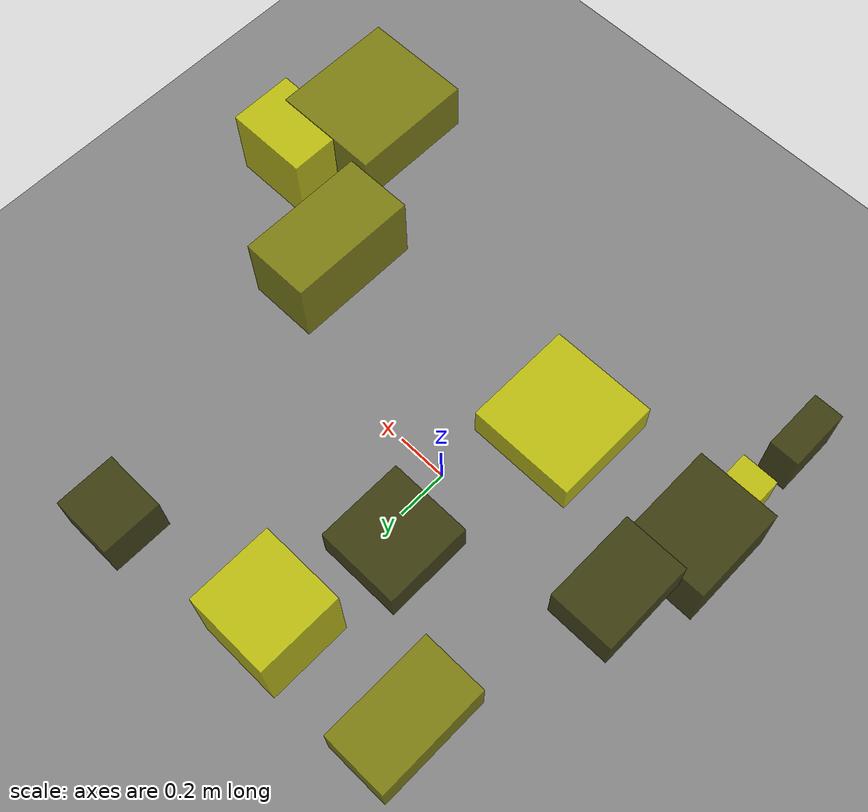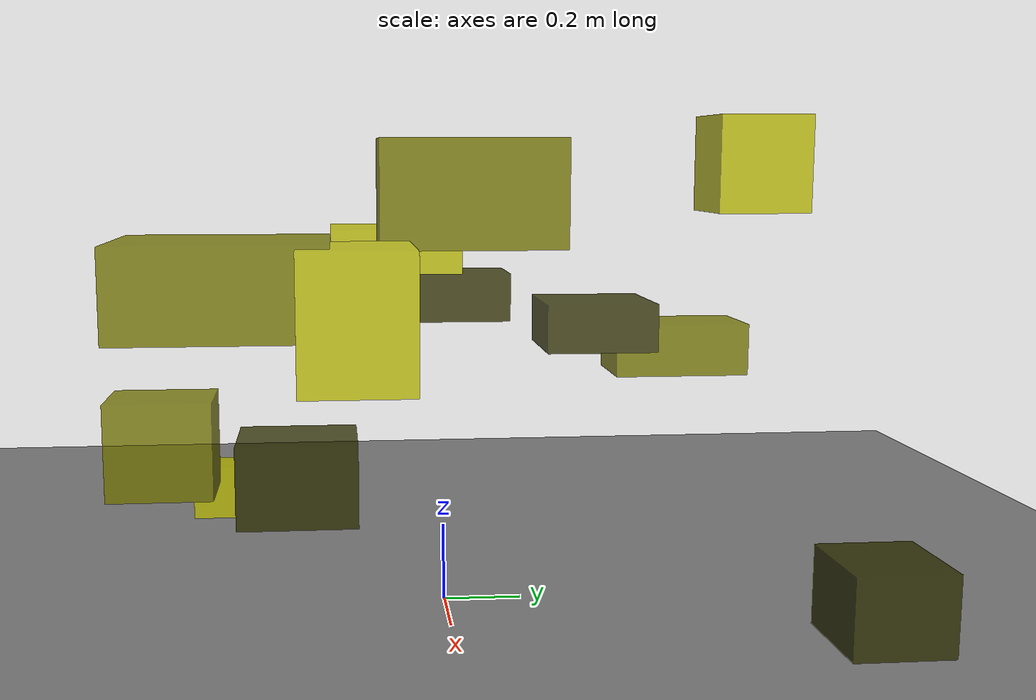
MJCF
<?xml version="1.0"?>
<mujoco model="obstacle_scene">
  <compiler angle="radian" coordinate="local"/>
  <option timestep="0.001" gravity="0 0 -9.81"/>

  <asset>
    <material name="obstacle_mat" rgba="0.8 0.8 0.0 0.8"/>
    <material name="ground_mat" rgba="0.5 0.5 0.5 1"/>
  </asset>

  <worldbody>
    <!-- Ground plane -->
    <geom name="ground" type="plane" size="3 3 0.1" material="ground_mat"/>

    <!-- Obstacles -->
    <body name="obstacle_0" pos="0.633501 0.911309 0.187976">
      <geom name="obs_0" type="box" size="0.121818 0.114896 0.093543" rgba="0.2 0.2 0.0 0.8"/>
    </body>
    <body name="obstacle_1" pos="0.777344 -0.488905 0.903574">
      <geom name="obs_1" type="box" size="0.180055 0.203262 0.088653" rgba="0.5 0.5 0.0 0.8"/>
    </body>
    <body name="obstacle_2" pos="-0.381252 -0.107235 0.895071">
      <geom name="obs_2" type="box" size="0.173667 0.175822 0.058973" rgba="0.8 0.8 0.0 0.8"/>
    </body>
    <body name="obstacle_3" pos="-0.802557 0.107106 0.717903">
      <geom name="obs_3" type="box" size="0.110805 0.160357 0.073797" rgba="0.2 0.2 0.0 0.8"/>
    </body>
    <body name="obstacle_4" pos="0.421378 0.021711 1.069357">
      <geom name="obs_4" type="box" size="0.109082 0.201508 0.118489" rgba="0.5 0.5 0.0 0.8"/>
    </body>
    <body name="obstacle_5" pos="-0.277935 0.883524 1.128969">
      <geom name="obs_5" type="box" size="0.127981 0.126404 0.131971" rgba="0.8 0.8 0.0 0.8"/>
    </body>
    <body name="obstacle_6" pos="-0.240591 0.435218 0.695438">
      <geom name="obs_6" type="box" size="0.142039 0.148577 0.064692" rgba="0.2 0.2 0.0 0.8"/>
    </body>
    <body name="obstacle_7" pos="0.869881 -0.598161 0.619799">
      <geom name="obs_7" type="box" size="0.077411 0.096710 0.090068" rgba="0.5 0.5 0.0 0.8"/>
    </body>
    <body name="obstacle_8" pos="0.883282 -0.239253 0.856244">
      <geom name="obs_8" type="box" size="0.140557 0.107819 0.129942" rgba="0.8 0.8 0.0 0.8"/>
    </body>
    <body name="obstacle_9" pos="-0.849500 -0.850264 0.256055">
      <geom name="obs_9" type="box" size="0.057063 0.119432 0.109566" rgba="0.2 0.2 0.0 0.8"/>
    </body>
    <body name="obstacle_10" pos="-0.607661 0.761631 0.574766">
      <geom name="obs_10" type="box" size="0.115574 0.199652 0.076907" rgba="0.5 0.5 0.0 0.8"/>
    </body>
    <body name="obstacle_11" pos="-0.808201 -0.575464 0.107403">
      <geom name="obs_11" type="box" size="0.073071 0.143800 0.079789" rgba="0.8 0.8 0.0 0.8"/>
    </body>
    <body name="obstacle_12" pos="-0.801384 -0.396513 0.139228">
      <geom name="obs_12" type="box" size="0.160761 0.188785 0.131905" rgba="0.2 0.2 0.0 0.8"/>
    </body>
  </worldbody>
</mujoco>
